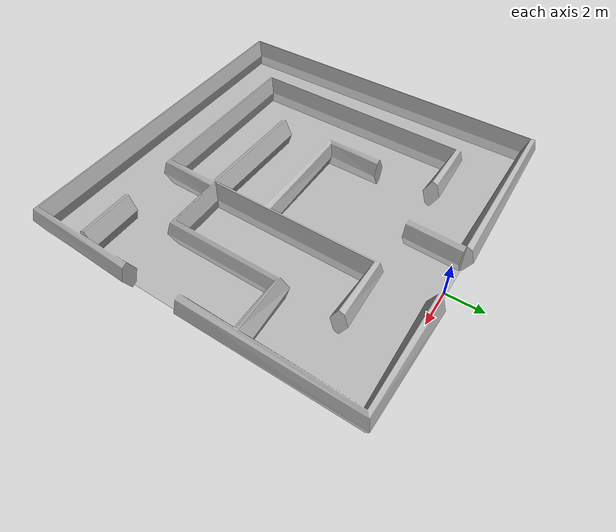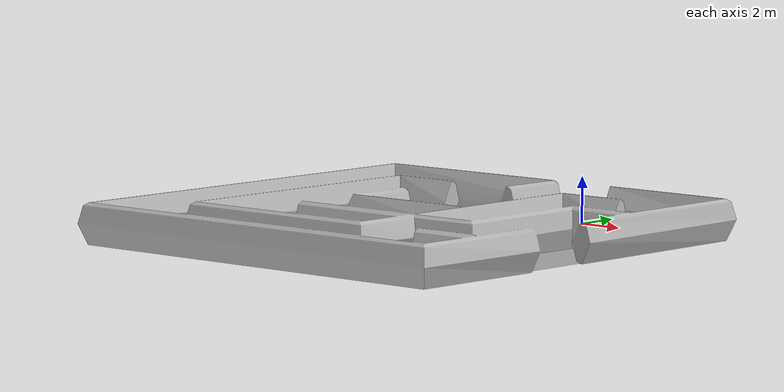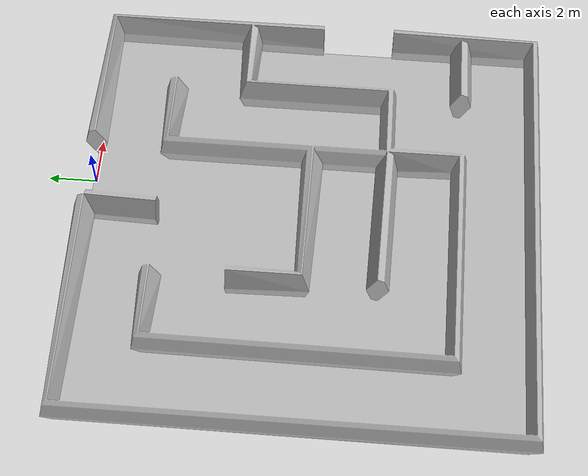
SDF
<?xml version="1.0" ?>
<sdf version="1.5">
  <model name="maze">
    <static>true</static>
    <link name="link">
      <collision name="collision">
        <geometry>
          <mesh>
            <uri>model://maze/meshes/Maze-scale.stl</uri>
            <scale>0.01 0.01 0.01</scale>
          </mesh>
        </geometry>
      </collision>
      <visual name="visual">
        <geometry>
          <mesh>
            <uri>model://maze/meshes/Maze-scale.stl</uri>
            <scale>0.01 0.01 0.01</scale>
          </mesh>
        </geometry>
        <material>
        </material>
      </visual>
    </link>
  </model>
</sdf>
